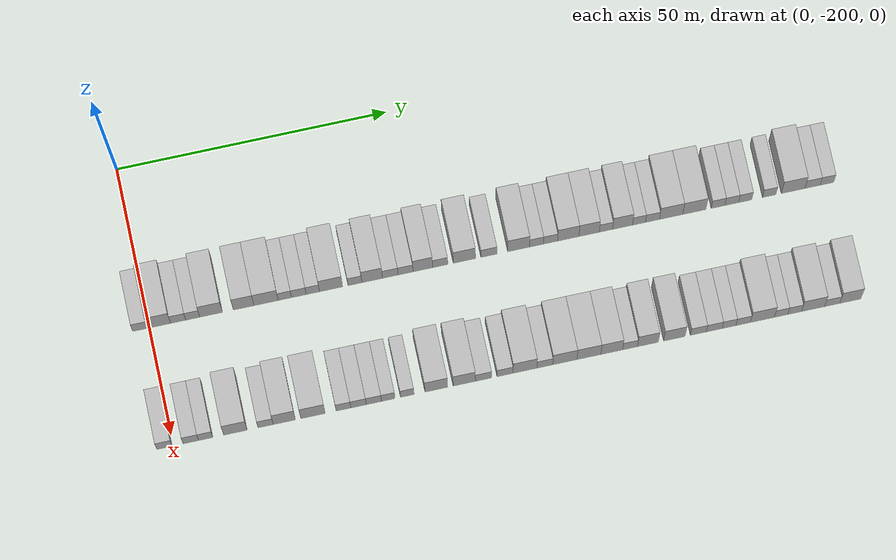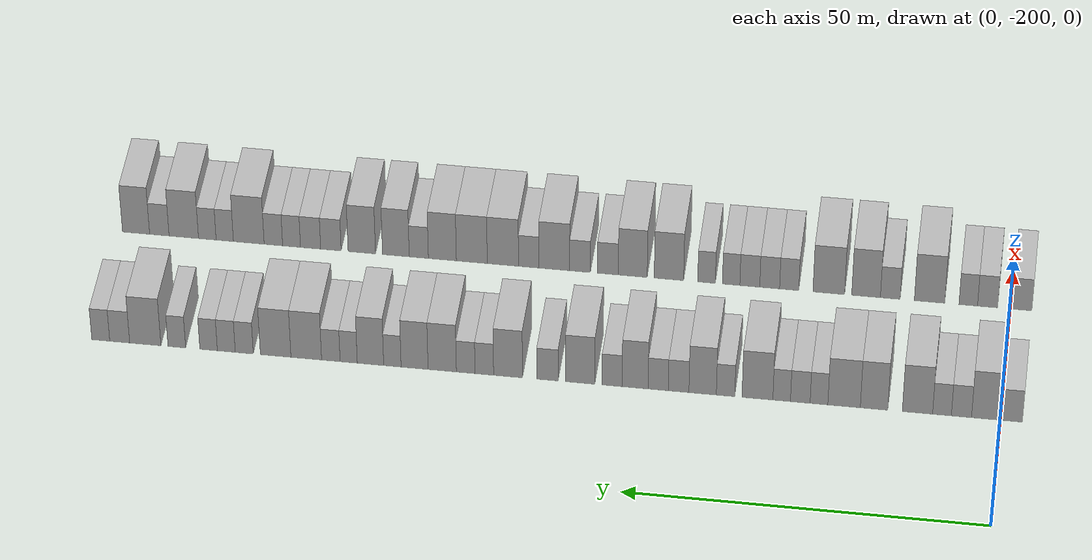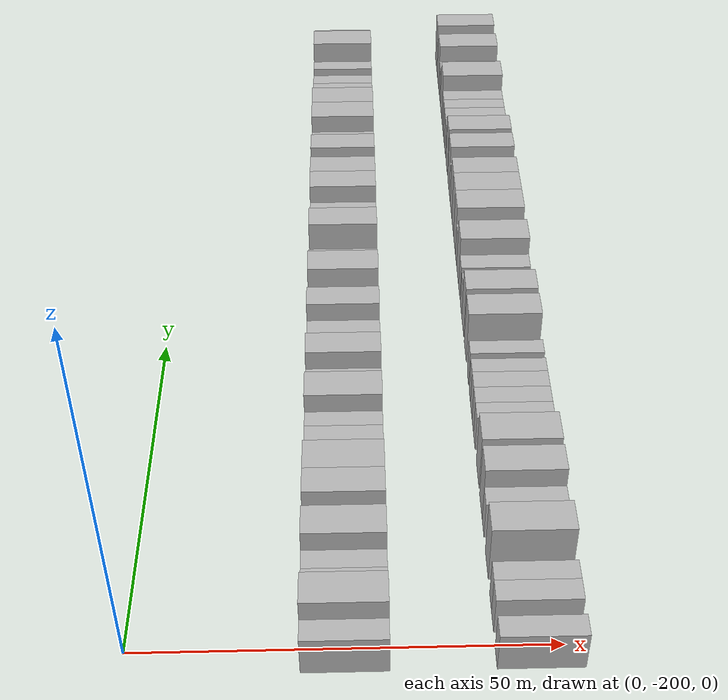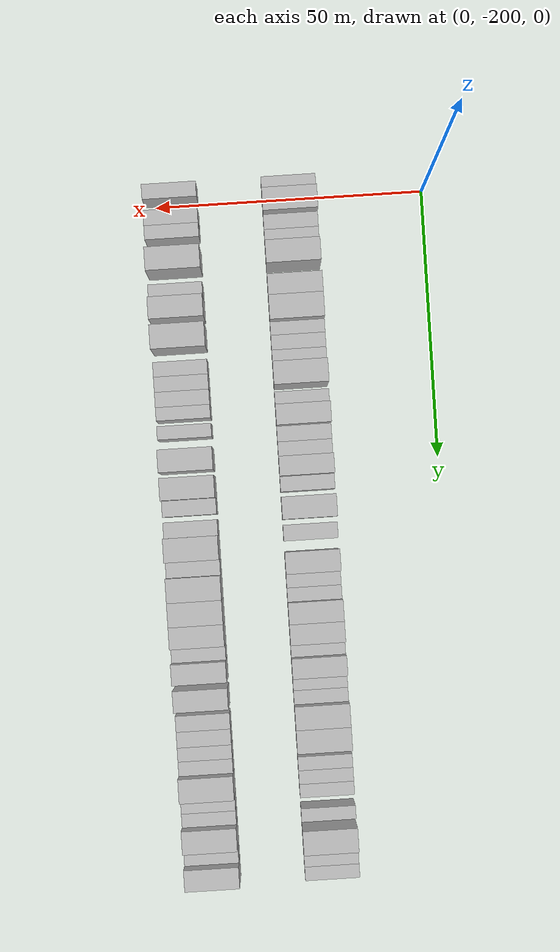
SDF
<sdf version="1.6">
 <world name="default">
  <model name="building_1">
   <static>1</static>
   <pose>25.0000 -201.6089 0 0.000000 0.000000 0.000000</pose>
   <link name="link">
    <pose>0 0 3.00 0 0 0</pose>
    <collision name="collision"><geometry><box><size>10.0000 2.7822 6.0000</size></box></geometry></collision>
    <visual name="visual">
     <cast_shadows>0</cast_shadows>
     <geometry><box><size>10.0000 2.7822 6.0000</size></box></geometry>
     <material>
      <script>
       <uri>model://HANNAS_wall/materials/scripts</uri>
       <uri>model://HANNAS_wall/materials/textures</uri>
       <name>vrc/HANNAS_wall</name>
      </script>
     </material>
    </visual>
   </link>
  </model>
  <model name="building_2">
   <static>1</static>
   <pose>25.0000 -198.1275 0 0.000000 0.000000 0.000000</pose>
   <link name="link">
    <pose>0 0 4.50 0 0 0</pose>
    <collision name="collision"><geometry><box><size>10.0000 4.1806 9.0000</size></box></geometry></collision>
    <visual name="visual">
     <cast_shadows>0</cast_shadows>
     <geometry><box><size>10.0000 4.1806 9.0000</size></box></geometry>
     <material>
      <script>
       <uri>model://HANNAS_wall/materials/scripts</uri>
       <uri>model://HANNAS_wall/materials/textures</uri>
       <name>vrc/HANNAS_wall</name>
      </script>
     </material>
    </visual>
   </link>
  </model>
  <model name="building_3">
   <static>1</static>
   <pose>25.0000 -194.6567 0 0.000000 0.000000 0.000000</pose>
   <link name="link">
    <pose>0 0 3.00 0 0 0</pose>
    <collision name="collision"><geometry><box><size>10.0000 2.7611 6.0000</size></box></geometry></collision>
    <visual name="visual">
     <cast_shadows>0</cast_shadows>
     <geometry><box><size>10.0000 2.7611 6.0000</size></box></geometry>
     <material>
      <script>
       <uri>model://HANNAS_wall/materials/scripts</uri>
       <uri>model://HANNAS_wall/materials/textures</uri>
       <name>vrc/HANNAS_wall</name>
      </script>
     </material>
    </visual>
   </link>
  </model>
  <model name="building_4">
   <static>1</static>
   <pose>25.0000 -191.9876 0 0.000000 0.000000 0.000000</pose>
   <link name="link">
    <pose>0 0 3.00 0 0 0</pose>
    <collision name="collision"><geometry><box><size>10.0000 2.5771 6.0000</size></box></geometry></collision>
    <visual name="visual">
     <cast_shadows>0</cast_shadows>
     <geometry><box><size>10.0000 2.5771 6.0000</size></box></geometry>
     <material>
      <script>
       <uri>model://HANNAS_wall/materials/scripts</uri>
       <uri>model://HANNAS_wall/materials/textures</uri>
       <name>vrc/HANNAS_wall</name>
      </script>
     </material>
    </visual>
   </link>
  </model>
  <model name="building_5">
   <static>1</static>
   <pose>25.0000 -188.6193 0 0.000000 0.000000 0.000000</pose>
   <link name="link">
    <pose>0 0 4.50 0 0 0</pose>
    <collision name="collision"><geometry><box><size>10.0000 4.1595 9.0000</size></box></geometry></collision>
    <visual name="visual">
     <cast_shadows>0</cast_shadows>
     <geometry><box><size>10.0000 4.1595 9.0000</size></box></geometry>
     <material>
      <script>
       <uri>model://HANNAS_wall/materials/scripts</uri>
       <uri>model://HANNAS_wall/materials/textures</uri>
       <name>vrc/HANNAS_wall</name>
      </script>
     </material>
    </visual>
   </link>
  </model>
  <model name="building_6">
   <static>1</static>
   <pose>25.0000 -182.6517 0 0.000000 0.000000 0.000000</pose>
   <link name="link">
    <pose>0 0 4.50 0 0 0</pose>
    <collision name="collision"><geometry><box><size>10.0000 3.7756 9.0000</size></box></geometry></collision>
    <visual name="visual">
     <cast_shadows>0</cast_shadows>
     <geometry><box><size>10.0000 3.7756 9.0000</size></box></geometry>
     <material>
      <script>
       <uri>model://HANNAS_wall/materials/scripts</uri>
       <uri>model://HANNAS_wall/materials/textures</uri>
       <name>vrc/HANNAS_wall</name>
      </script>
     </material>
    </visual>
   </link>
  </model>
  <model name="building_7">
   <static>1</static>
   <pose>25.0000 -178.5277 0 0.000000 0.000000 0.000000</pose>
   <link name="link">
    <pose>0 0 4.50 0 0 0</pose>
    <collision name="collision"><geometry><box><size>10.0000 4.4723 9.0000</size></box></geometry></collision>
    <visual name="visual">
     <cast_shadows>0</cast_shadows>
     <geometry><box><size>10.0000 4.4723 9.0000</size></box></geometry>
     <material>
      <script>
       <uri>model://HANNAS_wall/materials/scripts</uri>
       <uri>model://HANNAS_wall/materials/textures</uri>
       <name>vrc/HANNAS_wall</name>
      </script>
     </material>
    </visual>
   </link>
  </model>
  <model name="building_8">
   <static>1</static>
   <pose>25.0000 -175.0698 0 0.000000 0.000000 0.000000</pose>
   <link name="link">
    <pose>0 0 3.00 0 0 0</pose>
    <collision name="collision"><geometry><box><size>10.0000 2.4434 6.0000</size></box></geometry></collision>
    <visual name="visual">
     <cast_shadows>0</cast_shadows>
     <geometry><box><size>10.0000 2.4434 6.0000</size></box></geometry>
     <material>
      <script>
       <uri>model://HANNAS_wall/materials/scripts</uri>
       <uri>model://HANNAS_wall/materials/textures</uri>
       <name>vrc/HANNAS_wall</name>
      </script>
     </material>
    </visual>
   </link>
  </model>
  <model name="building_9">
   <static>1</static>
   <pose>25.0000 -172.4947 0 0.000000 0.000000 0.000000</pose>
   <link name="link">
    <pose>0 0 3.00 0 0 0</pose>
    <collision name="collision"><geometry><box><size>10.0000 2.7070 6.0000</size></box></geometry></collision>
    <visual name="visual">
     <cast_shadows>0</cast_shadows>
     <geometry><box><size>10.0000 2.7070 6.0000</size></box></geometry>
     <material>
      <script>
       <uri>model://HANNAS_wall/materials/scripts</uri>
       <uri>model://HANNAS_wall/materials/textures</uri>
       <name>vrc/HANNAS_wall</name>
      </script>
     </material>
    </visual>
   </link>
  </model>
  <model name="building_10">
   <static>1</static>
   <pose>25.0000 -169.9263 0 0.000000 0.000000 0.000000</pose>
   <link name="link">
    <pose>0 0 3.00 0 0 0</pose>
    <collision name="collision"><geometry><box><size>10.0000 2.4297 6.0000</size></box></geometry></collision>
    <visual name="visual">
     <cast_shadows>0</cast_shadows>
     <geometry><box><size>10.0000 2.4297 6.0000</size></box></geometry>
     <material>
      <script>
       <uri>model://HANNAS_wall/materials/scripts</uri>
       <uri>model://HANNAS_wall/materials/textures</uri>
       <name>vrc/HANNAS_wall</name>
      </script>
     </material>
    </visual>
   </link>
  </model>
  <model name="building_11">
   <static>1</static>
   <pose>25.0000 -166.5794 0 0.000000 0.000000 0.000000</pose>
   <link name="link">
    <pose>0 0 4.50 0 0 0</pose>
    <collision name="collision"><geometry><box><size>10.0000 4.2642 9.0000</size></box></geometry></collision>
    <visual name="visual">
     <cast_shadows>0</cast_shadows>
     <geometry><box><size>10.0000 4.2642 9.0000</size></box></geometry>
     <material>
      <script>
       <uri>model://HANNAS_wall/materials/scripts</uri>
       <uri>model://HANNAS_wall/materials/textures</uri>
       <name>vrc/HANNAS_wall</name>
      </script>
     </material>
    </visual>
   </link>
  </model>
  <model name="building_12">
   <static>1</static>
   <pose>25.0000 -162.1725 0 0.000000 0.000000 0.000000</pose>
   <link name="link">
    <pose>0 0 3.00 0 0 0</pose>
    <collision name="collision"><geometry><box><size>10.0000 2.5494 6.0000</size></box></geometry></collision>
    <visual name="visual">
     <cast_shadows>0</cast_shadows>
     <geometry><box><size>10.0000 2.5494 6.0000</size></box></geometry>
     <material>
      <script>
       <uri>model://HANNAS_wall/materials/scripts</uri>
       <uri>model://HANNAS_wall/materials/textures</uri>
       <name>vrc/HANNAS_wall</name>
      </script>
     </material>
    </visual>
   </link>
  </model>
  <model name="building_13">
   <static>1</static>
   <pose>25.0000 -159.0019 0 0.000000 0.000000 0.000000</pose>
   <link name="link">
    <pose>0 0 4.50 0 0 0</pose>
    <collision name="collision"><geometry><box><size>10.0000 3.7918 9.0000</size></box></geometry></collision>
    <visual name="visual">
     <cast_shadows>0</cast_shadows>
     <geometry><box><size>10.0000 3.7918 9.0000</size></box></geometry>
     <material>
      <script>
       <uri>model://HANNAS_wall/materials/scripts</uri>
       <uri>model://HANNAS_wall/materials/textures</uri>
       <name>vrc/HANNAS_wall</name>
      </script>
     </material>
    </visual>
   </link>
  </model>
  <model name="building_14">
   <static>1</static>
   <pose>25.0000 -155.6749 0 0.000000 0.000000 0.000000</pose>
   <link name="link">
    <pose>0 0 3.00 0 0 0</pose>
    <collision name="collision"><geometry><box><size>10.0000 2.8622 6.0000</size></box></geometry></collision>
    <visual name="visual">
     <cast_shadows>0</cast_shadows>
     <geometry><box><size>10.0000 2.8622 6.0000</size></box></geometry>
     <material>
      <script>
       <uri>model://HANNAS_wall/materials/scripts</uri>
       <uri>model://HANNAS_wall/materials/textures</uri>
       <name>vrc/HANNAS_wall</name>
      </script>
     </material>
    </visual>
   </link>
  </model>
  <model name="building_15">
   <static>1</static>
   <pose>25.0000 -152.8484 0 0.000000 0.000000 0.000000</pose>
   <link name="link">
    <pose>0 0 3.00 0 0 0</pose>
    <collision name="collision"><geometry><box><size>10.0000 2.7909 6.0000</size></box></geometry></collision>
    <visual name="visual">
     <cast_shadows>0</cast_shadows>
     <geometry><box><size>10.0000 2.7909 6.0000</size></box></geometry>
     <material>
      <script>
       <uri>model://HANNAS_wall/materials/scripts</uri>
       <uri>model://HANNAS_wall/materials/textures</uri>
       <name>vrc/HANNAS_wall</name>
      </script>
     </material>
    </visual>
   </link>
  </model>
  <model name="building_16">
   <static>1</static>
   <pose>25.0000 -149.6507 0 0.000000 0.000000 0.000000</pose>
   <link name="link">
    <pose>0 0 4.50 0 0 0</pose>
    <collision name="collision"><geometry><box><size>10.0000 3.6045 9.0000</size></box></geometry></collision>
    <visual name="visual">
     <cast_shadows>0</cast_shadows>
     <geometry><box><size>10.0000 3.6045 9.0000</size></box></geometry>
     <material>
      <script>
       <uri>model://HANNAS_wall/materials/scripts</uri>
       <uri>model://HANNAS_wall/materials/textures</uri>
       <name>vrc/HANNAS_wall</name>
      </script>
     </material>
    </visual>
   </link>
  </model>
  <model name="building_17">
   <static>1</static>
   <pose>25.0000 -146.4542 0 0.000000 0.000000 0.000000</pose>
   <link name="link">
    <pose>0 0 3.00 0 0 0</pose>
    <collision name="collision"><geometry><box><size>10.0000 2.7886 6.0000</size></box></geometry></collision>
    <visual name="visual">
     <cast_shadows>0</cast_shadows>
     <geometry><box><size>10.0000 2.7886 6.0000</size></box></geometry>
     <material>
      <script>
       <uri>model://HANNAS_wall/materials/scripts</uri>
       <uri>model://HANNAS_wall/materials/textures</uri>
       <name>vrc/HANNAS_wall</name>
      </script>
     </material>
    </visual>
   </link>
  </model>
  <model name="building_18">
   <static>1</static>
   <pose>25.0000 -142.0070 0 0.000000 0.000000 0.000000</pose>
   <link name="link">
    <pose>0 0 4.50 0 0 0</pose>
    <collision name="collision"><geometry><box><size>10.0000 4.1057 9.0000</size></box></geometry></collision>
    <visual name="visual">
     <cast_shadows>0</cast_shadows>
     <geometry><box><size>10.0000 4.1057 9.0000</size></box></geometry>
     <material>
      <script>
       <uri>model://HANNAS_wall/materials/scripts</uri>
       <uri>model://HANNAS_wall/materials/textures</uri>
       <name>vrc/HANNAS_wall</name>
      </script>
     </material>
    </visual>
   </link>
  </model>
  <model name="building_19">
   <static>1</static>
   <pose>25.0000 -137.4761 0 0.000000 0.000000 0.000000</pose>
   <link name="link">
    <pose>0 0 3.00 0 0 0</pose>
    <collision name="collision"><geometry><box><size>10.0000 2.9560 6.0000</size></box></geometry></collision>
    <visual name="visual">
     <cast_shadows>0</cast_shadows>
     <geometry><box><size>10.0000 2.9560 6.0000</size></box></geometry>
     <material>
      <script>
       <uri>model://HANNAS_wall/materials/scripts</uri>
       <uri>model://HANNAS_wall/materials/textures</uri>
       <name>vrc/HANNAS_wall</name>
      </script>
     </material>
    </visual>
   </link>
  </model>
  <model name="building_20">
   <static>1</static>
   <pose>25.0000 -131.9859 0 0.000000 0.000000 0.000000</pose>
   <link name="link">
    <pose>0 0 4.50 0 0 0</pose>
    <collision name="collision"><geometry><box><size>10.0000 4.0244 9.0000</size></box></geometry></collision>
    <visual name="visual">
     <cast_shadows>0</cast_shadows>
     <geometry><box><size>10.0000 4.0244 9.0000</size></box></geometry>
     <material>
      <script>
       <uri>model://HANNAS_wall/materials/scripts</uri>
       <uri>model://HANNAS_wall/materials/textures</uri>
       <name>vrc/HANNAS_wall</name>
      </script>
     </material>
    </visual>
   </link>
  </model>
  <model name="building_21">
   <static>1</static>
   <pose>25.0000 -128.6789 0 0.000000 0.000000 0.000000</pose>
   <link name="link">
    <pose>0 0 3.00 0 0 0</pose>
    <collision name="collision"><geometry><box><size>10.0000 2.5896 6.0000</size></box></geometry></collision>
    <visual name="visual">
     <cast_shadows>0</cast_shadows>
     <geometry><box><size>10.0000 2.5896 6.0000</size></box></geometry>
     <material>
      <script>
       <uri>model://HANNAS_wall/materials/scripts</uri>
       <uri>model://HANNAS_wall/materials/textures</uri>
       <name>vrc/HANNAS_wall</name>
      </script>
     </material>
    </visual>
   </link>
  </model>
  <model name="building_22">
   <static>1</static>
   <pose>25.0000 -126.0847 0 0.000000 0.000000 0.000000</pose>
   <link name="link">
    <pose>0 0 3.00 0 0 0</pose>
    <collision name="collision"><geometry><box><size>10.0000 2.5989 6.0000</size></box></geometry></collision>
    <visual name="visual">
     <cast_shadows>0</cast_shadows>
     <geometry><box><size>10.0000 2.5989 6.0000</size></box></geometry>
     <material>
      <script>
       <uri>model://HANNAS_wall/materials/scripts</uri>
       <uri>model://HANNAS_wall/materials/textures</uri>
       <name>vrc/HANNAS_wall</name>
      </script>
     </material>
    </visual>
   </link>
  </model>
  <model name="building_23">
   <static>1</static>
   <pose>25.0000 -122.8074 0 0.000000 0.000000 0.000000</pose>
   <link name="link">
    <pose>0 0 4.50 0 0 0</pose>
    <collision name="collision"><geometry><box><size>10.0000 3.9556 9.0000</size></box></geometry></collision>
    <visual name="visual">
     <cast_shadows>0</cast_shadows>
     <geometry><box><size>10.0000 3.9556 9.0000</size></box></geometry>
     <material>
      <script>
       <uri>model://HANNAS_wall/materials/scripts</uri>
       <uri>model://HANNAS_wall/materials/textures</uri>
       <name>vrc/HANNAS_wall</name>
      </script>
     </material>
    </visual>
   </link>
  </model>
  <model name="building_24">
   <static>1</static>
   <pose>25.0000 -118.9435 0 0.000000 0.000000 0.000000</pose>
   <link name="link">
    <pose>0 0 4.50 0 0 0</pose>
    <collision name="collision"><geometry><box><size>10.0000 3.7723 9.0000</size></box></geometry></collision>
    <visual name="visual">
     <cast_shadows>0</cast_shadows>
     <geometry><box><size>10.0000 3.7723 9.0000</size></box></geometry>
     <material>
      <script>
       <uri>model://HANNAS_wall/materials/scripts</uri>
       <uri>model://HANNAS_wall/materials/textures</uri>
       <name>vrc/HANNAS_wall</name>
      </script>
     </material>
    </visual>
   </link>
  </model>
  <model name="building_25">
   <static>1</static>
   <pose>25.0000 -115.8389 0 0.000000 0.000000 0.000000</pose>
   <link name="link">
    <pose>0 0 3.00 0 0 0</pose>
    <collision name="collision"><geometry><box><size>10.0000 2.4369 6.0000</size></box></geometry></collision>
    <visual name="visual">
     <cast_shadows>0</cast_shadows>
     <geometry><box><size>10.0000 2.4369 6.0000</size></box></geometry>
     <material>
      <script>
       <uri>model://HANNAS_wall/materials/scripts</uri>
       <uri>model://HANNAS_wall/materials/textures</uri>
       <name>vrc/HANNAS_wall</name>
      </script>
     </material>
    </visual>
   </link>
  </model>
  <model name="building_26">
   <static>1</static>
   <pose>25.0000 -112.7726 0 0.000000 0.000000 0.000000</pose>
   <link name="link">
    <pose>0 0 4.50 0 0 0</pose>
    <collision name="collision"><geometry><box><size>10.0000 3.6957 9.0000</size></box></geometry></collision>
    <visual name="visual">
     <cast_shadows>0</cast_shadows>
     <geometry><box><size>10.0000 3.6957 9.0000</size></box></geometry>
     <material>
      <script>
       <uri>model://HANNAS_wall/materials/scripts</uri>
       <uri>model://HANNAS_wall/materials/textures</uri>
       <name>vrc/HANNAS_wall</name>
      </script>
     </material>
    </visual>
   </link>
  </model>
  <model name="building_27">
   <static>1</static>
   <pose>25.0000 -109.7204 0 0.000000 0.000000 0.000000</pose>
   <link name="link">
    <pose>0 0 3.00 0 0 0</pose>
    <collision name="collision"><geometry><box><size>10.0000 2.4086 6.0000</size></box></geometry></collision>
    <visual name="visual">
     <cast_shadows>0</cast_shadows>
     <geometry><box><size>10.0000 2.4086 6.0000</size></box></geometry>
     <material>
      <script>
       <uri>model://HANNAS_wall/materials/scripts</uri>
       <uri>model://HANNAS_wall/materials/textures</uri>
       <name>vrc/HANNAS_wall</name>
      </script>
     </material>
    </visual>
   </link>
  </model>
  <model name="building_28">
   <static>1</static>
   <pose>25.0000 -107.2191 0 0.000000 0.000000 0.000000</pose>
   <link name="link">
    <pose>0 0 3.00 0 0 0</pose>
    <collision name="collision"><geometry><box><size>10.0000 2.5940 6.0000</size></box></geometry></collision>
    <visual name="visual">
     <cast_shadows>0</cast_shadows>
     <geometry><box><size>10.0000 2.5940 6.0000</size></box></geometry>
     <material>
      <script>
       <uri>model://HANNAS_wall/materials/scripts</uri>
       <uri>model://HANNAS_wall/materials/textures</uri>
       <name>vrc/HANNAS_wall</name>
      </script>
     </material>
    </visual>
   </link>
  </model>
  <model name="building_29">
   <static>1</static>
   <pose>25.0000 -103.7713 0 0.000000 0.000000 0.000000</pose>
   <link name="link">
    <pose>0 0 4.50 0 0 0</pose>
    <collision name="collision"><geometry><box><size>10.0000 4.3016 9.0000</size></box></geometry></collision>
    <visual name="visual">
     <cast_shadows>0</cast_shadows>
     <geometry><box><size>10.0000 4.3016 9.0000</size></box></geometry>
     <material>
      <script>
       <uri>model://HANNAS_wall/materials/scripts</uri>
       <uri>model://HANNAS_wall/materials/textures</uri>
       <name>vrc/HANNAS_wall</name>
      </script>
     </material>
    </visual>
   </link>
  </model>
  <model name="building_30">
   <static>1</static>
   <pose>25.0000 -99.4727 0 0.000000 0.000000 0.000000</pose>
   <link name="link">
    <pose>0 0 4.50 0 0 0</pose>
    <collision name="collision"><geometry><box><size>10.0000 4.2955 9.0000</size></box></geometry></collision>
    <visual name="visual">
     <cast_shadows>0</cast_shadows>
     <geometry><box><size>10.0000 4.2955 9.0000</size></box></geometry>
     <material>
      <script>
       <uri>model://HANNAS_wall/materials/scripts</uri>
       <uri>model://HANNAS_wall/materials/textures</uri>
       <name>vrc/HANNAS_wall</name>
      </script>
     </material>
    </visual>
   </link>
  </model>
  <model name="building_31">
   <static>1</static>
   <pose>25.0000 -95.0583 0 0.000000 0.000000 0.000000</pose>
   <link name="link">
    <pose>0 0 3.00 0 0 0</pose>
    <collision name="collision"><geometry><box><size>10.0000 2.5334 6.0000</size></box></geometry></collision>
    <visual name="visual">
     <cast_shadows>0</cast_shadows>
     <geometry><box><size>10.0000 2.5334 6.0000</size></box></geometry>
     <material>
      <script>
       <uri>model://HANNAS_wall/materials/scripts</uri>
       <uri>model://HANNAS_wall/materials/textures</uri>
       <name>vrc/HANNAS_wall</name>
      </script>
     </material>
    </visual>
   </link>
  </model>
  <model name="building_32">
   <static>1</static>
   <pose>25.0000 -92.5338 0 0.000000 0.000000 0.000000</pose>
   <link name="link">
    <pose>0 0 3.00 0 0 0</pose>
    <collision name="collision"><geometry><box><size>10.0000 2.5155 6.0000</size></box></geometry></collision>
    <visual name="visual">
     <cast_shadows>0</cast_shadows>
     <geometry><box><size>10.0000 2.5155 6.0000</size></box></geometry>
     <material>
      <script>
       <uri>model://HANNAS_wall/materials/scripts</uri>
       <uri>model://HANNAS_wall/materials/textures</uri>
       <name>vrc/HANNAS_wall</name>
      </script>
     </material>
    </visual>
   </link>
  </model>
  <model name="building_33">
   <static>1</static>
   <pose>25.0000 -90.0422 0 0.000000 0.000000 0.000000</pose>
   <link name="link">
    <pose>0 0 3.00 0 0 0</pose>
    <collision name="collision"><geometry><box><size>10.0000 2.4678 6.0000</size></box></geometry></collision>
    <visual name="visual">
     <cast_shadows>0</cast_shadows>
     <geometry><box><size>10.0000 2.4678 6.0000</size></box></geometry>
     <material>
      <script>
       <uri>model://HANNAS_wall/materials/scripts</uri>
       <uri>model://HANNAS_wall/materials/textures</uri>
       <name>vrc/HANNAS_wall</name>
      </script>
     </material>
    </visual>
   </link>
  </model>
  <model name="building_34">
   <static>1</static>
   <pose>25.0000 -85.5659 0 0.000000 0.000000 0.000000</pose>
   <link name="link">
    <pose>0 0 3.00 0 0 0</pose>
    <collision name="collision"><geometry><box><size>10.0000 2.4848 6.0000</size></box></geometry></collision>
    <visual name="visual">
     <cast_shadows>0</cast_shadows>
     <geometry><box><size>10.0000 2.4848 6.0000</size></box></geometry>
     <material>
      <script>
       <uri>model://HANNAS_wall/materials/scripts</uri>
       <uri>model://HANNAS_wall/materials/textures</uri>
       <name>vrc/HANNAS_wall</name>
      </script>
     </material>
    </visual>
   </link>
  </model>
  <model name="building_35">
   <static>1</static>
   <pose>25.0000 -81.1185 0 0.000000 0.000000 0.000000</pose>
   <link name="link">
    <pose>0 0 4.50 0 0 0</pose>
    <collision name="collision"><geometry><box><size>10.0000 4.4101 9.0000</size></box></geometry></collision>
    <visual name="visual">
     <cast_shadows>0</cast_shadows>
     <geometry><box><size>10.0000 4.4101 9.0000</size></box></geometry>
     <material>
      <script>
       <uri>model://HANNAS_wall/materials/scripts</uri>
       <uri>model://HANNAS_wall/materials/textures</uri>
       <name>vrc/HANNAS_wall</name>
      </script>
     </material>
    </visual>
   </link>
  </model>
  <model name="building_36">
   <static>1</static>
   <pose>25.0000 -77.5045 0 0.000000 0.000000 0.000000</pose>
   <link name="link">
    <pose>0 0 3.00 0 0 0</pose>
    <collision name="collision"><geometry><box><size>10.0000 2.8178 6.0000</size></box></geometry></collision>
    <visual name="visual">
     <cast_shadows>0</cast_shadows>
     <geometry><box><size>10.0000 2.8178 6.0000</size></box></geometry>
     <material>
      <script>
       <uri>model://HANNAS_wall/materials/scripts</uri>
       <uri>model://HANNAS_wall/materials/textures</uri>
       <name>vrc/HANNAS_wall</name>
      </script>
     </material>
    </visual>
   </link>
  </model>
  <model name="building_37">
   <static>1</static>
   <pose>25.0000 -74.8327 0 0.000000 0.000000 0.000000</pose>
   <link name="link">
    <pose>0 0 3.00 0 0 0</pose>
    <collision name="collision"><geometry><box><size>10.0000 2.5258 6.0000</size></box></geometry></collision>
    <visual name="visual">
     <cast_shadows>0</cast_shadows>
     <geometry><box><size>10.0000 2.5258 6.0000</size></box></geometry>
     <material>
      <script>
       <uri>model://HANNAS_wall/materials/scripts</uri>
       <uri>model://HANNAS_wall/materials/textures</uri>
       <name>vrc/HANNAS_wall</name>
      </script>
     </material>
    </visual>
   </link>
  </model>
  <model name="building_110">
   <static>1</static>
   <pose>47.0000 -201.6073 0 0.000000 0.000000 0.000000</pose>
   <link name="link">
    <pose>0 0 3.00 0 0 0</pose>
    <collision name="collision"><geometry><box><size>10.0000 2.7853 6.0000</size></box></geometry></collision>
    <visual name="visual">
     <cast_shadows>0</cast_shadows>
     <geometry><box><size>10.0000 2.7853 6.0000</size></box></geometry>
     <material>
      <script>
       <uri>model://HANNAS_wall/materials/scripts</uri>
       <uri>model://HANNAS_wall/materials/textures</uri>
       <name>vrc/HANNAS_wall</name>
      </script>
     </material>
    </visual>
   </link>
  </model>
  <model name="building_111">
   <static>1</static>
   <pose>47.0000 -196.8061 0 0.000000 0.000000 0.000000</pose>
   <link name="link">
    <pose>0 0 3.00 0 0 0</pose>
    <collision name="collision"><geometry><box><size>10.0000 2.8171 6.0000</size></box></geometry></collision>
    <visual name="visual">
     <cast_shadows>0</cast_shadows>
     <geometry><box><size>10.0000 2.8171 6.0000</size></box></geometry>
     <material>
      <script>
       <uri>model://HANNAS_wall/materials/scripts</uri>
       <uri>model://HANNAS_wall/materials/textures</uri>
       <name>vrc/HANNAS_wall</name>
      </script>
     </material>
    </visual>
   </link>
  </model>
  <model name="building_112">
   <static>1</static>
   <pose>47.0000 -194.0974 0 0.000000 0.000000 0.000000</pose>
   <link name="link">
    <pose>0 0 3.00 0 0 0</pose>
    <collision name="collision"><geometry><box><size>10.0000 2.6004 6.0000</size></box></geometry></collision>
    <visual name="visual">
     <cast_shadows>0</cast_shadows>
     <geometry><box><size>10.0000 2.6004 6.0000</size></box></geometry>
     <material>
      <script>
       <uri>model://HANNAS_wall/materials/scripts</uri>
       <uri>model://HANNAS_wall/materials/textures</uri>
       <name>vrc/HANNAS_wall</name>
      </script>
     </material>
    </visual>
   </link>
  </model>
  <model name="building_113">
   <static>1</static>
   <pose>47.0000 -188.6657 0 0.000000 0.000000 0.000000</pose>
   <link name="link">
    <pose>0 0 4.50 0 0 0</pose>
    <collision name="collision"><geometry><box><size>10.0000 4.2632 9.0000</size></box></geometry></collision>
    <visual name="visual">
     <cast_shadows>0</cast_shadows>
     <geometry><box><size>10.0000 4.2632 9.0000</size></box></geometry>
     <material>
      <script>
       <uri>model://HANNAS_wall/materials/scripts</uri>
       <uri>model://HANNAS_wall/materials/textures</uri>
       <name>vrc/HANNAS_wall</name>
      </script>
     </material>
    </visual>
   </link>
  </model>
  <model name="building_114">
   <static>1</static>
   <pose>47.0000 -183.1464 0 0.000000 0.000000 0.000000</pose>
   <link name="link">
    <pose>0 0 3.00 0 0 0</pose>
    <collision name="collision"><geometry><box><size>10.0000 2.7753 6.0000</size></box></geometry></collision>
    <visual name="visual">
     <cast_shadows>0</cast_shadows>
     <geometry><box><size>10.0000 2.7753 6.0000</size></box></geometry>
     <material>
      <script>
       <uri>model://HANNAS_wall/materials/scripts</uri>
       <uri>model://HANNAS_wall/materials/textures</uri>
       <name>vrc/HANNAS_wall</name>
      </script>
     </material>
    </visual>
   </link>
  </model>
  <model name="building_115">
   <static>1</static>
   <pose>47.0000 -179.7407 0 0.000000 0.000000 0.000000</pose>
   <link name="link">
    <pose>0 0 4.50 0 0 0</pose>
    <collision name="collision"><geometry><box><size>10.0000 4.0362 9.0000</size></box></geometry></collision>
    <visual name="visual">
     <cast_shadows>0</cast_shadows>
     <geometry><box><size>10.0000 4.0362 9.0000</size></box></geometry>
     <material>
      <script>
       <uri>model://HANNAS_wall/materials/scripts</uri>
       <uri>model://HANNAS_wall/materials/textures</uri>
       <name>vrc/HANNAS_wall</name>
      </script>
     </material>
    </visual>
   </link>
  </model>
  <model name="building_116">
   <static>1</static>
   <pose>47.0000 -174.4920 0 0.000000 0.000000 0.000000</pose>
   <link name="link">
    <pose>0 0 4.50 0 0 0</pose>
    <collision name="collision"><geometry><box><size>10.0000 4.4612 9.0000</size></box></geometry></collision>
    <visual name="visual">
     <cast_shadows>0</cast_shadows>
     <geometry><box><size>10.0000 4.4612 9.0000</size></box></geometry>
     <material>
      <script>
       <uri>model://HANNAS_wall/materials/scripts</uri>
       <uri>model://HANNAS_wall/materials/textures</uri>
       <name>vrc/HANNAS_wall</name>
      </script>
     </material>
    </visual>
   </link>
  </model>
  <model name="building_117">
   <static>1</static>
   <pose>47.0000 -168.9097 0 0.000000 0.000000 0.000000</pose>
   <link name="link">
    <pose>0 0 3.00 0 0 0</pose>
    <collision name="collision"><geometry><box><size>10.0000 2.7035 6.0000</size></box></geometry></collision>
    <visual name="visual">
     <cast_shadows>0</cast_shadows>
     <geometry><box><size>10.0000 2.7035 6.0000</size></box></geometry>
     <material>
      <script>
       <uri>model://HANNAS_wall/materials/scripts</uri>
       <uri>model://HANNAS_wall/materials/textures</uri>
       <name>vrc/HANNAS_wall</name>
      </script>
     </material>
    </visual>
   </link>
  </model>
  <model name="building_118">
   <static>1</static>
   <pose>47.0000 -166.1570 0 0.000000 0.000000 0.000000</pose>
   <link name="link">
    <pose>0 0 3.00 0 0 0</pose>
    <collision name="collision"><geometry><box><size>10.0000 2.8018 6.0000</size></box></geometry></collision>
    <visual name="visual">
     <cast_shadows>0</cast_shadows>
     <geometry><box><size>10.0000 2.8018 6.0000</size></box></geometry>
     <material>
      <script>
       <uri>model://HANNAS_wall/materials/scripts</uri>
       <uri>model://HANNAS_wall/materials/textures</uri>
       <name>vrc/HANNAS_wall</name>
      </script>
     </material>
    </visual>
   </link>
  </model>
  <model name="building_119">
   <static>1</static>
   <pose>47.0000 -163.3509 0 0.000000 0.000000 0.000000</pose>
   <link name="link">
    <pose>0 0 3.00 0 0 0</pose>
    <collision name="collision"><geometry><box><size>10.0000 2.8104 6.0000</size></box></geometry></collision>
    <visual name="visual">
     <cast_shadows>0</cast_shadows>
     <geometry><box><size>10.0000 2.8104 6.0000</size></box></geometry>
     <material>
      <script>
       <uri>model://HANNAS_wall/materials/scripts</uri>
       <uri>model://HANNAS_wall/materials/textures</uri>
       <name>vrc/HANNAS_wall</name>
      </script>
     </material>
    </visual>
   </link>
  </model>
  <model name="building_120">
   <static>1</static>
   <pose>47.0000 -160.7114 0 0.000000 0.000000 0.000000</pose>
   <link name="link">
    <pose>0 0 3.00 0 0 0</pose>
    <collision name="collision"><geometry><box><size>10.0000 2.4686 6.0000</size></box></geometry></collision>
    <visual name="visual">
     <cast_shadows>0</cast_shadows>
     <geometry><box><size>10.0000 2.4686 6.0000</size></box></geometry>
     <material>
      <script>
       <uri>model://HANNAS_wall/materials/scripts</uri>
       <uri>model://HANNAS_wall/materials/textures</uri>
       <name>vrc/HANNAS_wall</name>
      </script>
     </material>
    </visual>
   </link>
  </model>
  <model name="building_121">
   <static>1</static>
   <pose>47.0000 -157.2325 0 0.000000 0.000000 0.000000</pose>
   <link name="link">
    <pose>0 0 3.00 0 0 0</pose>
    <collision name="collision"><geometry><box><size>10.0000 2.4892 6.0000</size></box></geometry></collision>
    <visual name="visual">
     <cast_shadows>0</cast_shadows>
     <geometry><box><size>10.0000 2.4892 6.0000</size></box></geometry>
     <material>
      <script>
       <uri>model://HANNAS_wall/materials/scripts</uri>
       <uri>model://HANNAS_wall/materials/textures</uri>
       <name>vrc/HANNAS_wall</name>
      </script>
     </material>
    </visual>
   </link>
  </model>
  <model name="building_122">
   <static>1</static>
   <pose>47.0000 -151.9059 0 0.000000 0.000000 0.000000</pose>
   <link name="link">
    <pose>0 0 4.50 0 0 0</pose>
    <collision name="collision"><geometry><box><size>10.0000 4.1640 9.0000</size></box></geometry></collision>
    <visual name="visual">
     <cast_shadows>0</cast_shadows>
     <geometry><box><size>10.0000 4.1640 9.0000</size></box></geometry>
     <material>
      <script>
       <uri>model://HANNAS_wall/materials/scripts</uri>
       <uri>model://HANNAS_wall/materials/textures</uri>
       <name>vrc/HANNAS_wall</name>
      </script>
     </material>
    </visual>
   </link>
  </model>
  <model name="building_123">
   <static>1</static>
   <pose>47.0000 -146.7754 0 0.000000 0.000000 0.000000</pose>
   <link name="link">
    <pose>0 0 4.50 0 0 0</pose>
    <collision name="collision"><geometry><box><size>10.0000 4.0970 9.0000</size></box></geometry></collision>
    <visual name="visual">
     <cast_shadows>0</cast_shadows>
     <geometry><box><size>10.0000 4.0970 9.0000</size></box></geometry>
     <material>
      <script>
       <uri>model://HANNAS_wall/materials/scripts</uri>
       <uri>model://HANNAS_wall/materials/textures</uri>
       <name>vrc/HANNAS_wall</name>
      </script>
     </material>
    </visual>
   </link>
  </model>
  <model name="building_124">
   <static>1</static>
   <pose>47.0000 -143.2453 0 0.000000 0.000000 0.000000</pose>
   <link name="link">
    <pose>0 0 3.00 0 0 0</pose>
    <collision name="collision"><geometry><box><size>10.0000 2.9632 6.0000</size></box></geometry></collision>
    <visual name="visual">
     <cast_shadows>0</cast_shadows>
     <geometry><box><size>10.0000 2.9632 6.0000</size></box></geometry>
     <material>
      <script>
       <uri>model://HANNAS_wall/materials/scripts</uri>
       <uri>model://HANNAS_wall/materials/textures</uri>
       <name>vrc/HANNAS_wall</name>
      </script>
     </material>
    </visual>
   </link>
  </model>
  <model name="building_125">
   <static>1</static>
   <pose>47.0000 -139.2953 0 0.000000 0.000000 0.000000</pose>
   <link name="link">
    <pose>0 0 3.00 0 0 0</pose>
    <collision name="collision"><geometry><box><size>10.0000 2.9368 6.0000</size></box></geometry></collision>
    <visual name="visual">
     <cast_shadows>0</cast_shadows>
     <geometry><box><size>10.0000 2.9368 6.0000</size></box></geometry>
     <material>
      <script>
       <uri>model://HANNAS_wall/materials/scripts</uri>
       <uri>model://HANNAS_wall/materials/textures</uri>
       <name>vrc/HANNAS_wall</name>
      </script>
     </material>
    </visual>
   </link>
  </model>
  <model name="building_126">
   <static>1</static>
   <pose>47.0000 -135.6289 0 0.000000 0.000000 0.000000</pose>
   <link name="link">
    <pose>0 0 4.50 0 0 0</pose>
    <collision name="collision"><geometry><box><size>10.0000 4.3960 9.0000</size></box></geometry></collision>
    <visual name="visual">
     <cast_shadows>0</cast_shadows>
     <geometry><box><size>10.0000 4.3960 9.0000</size></box></geometry>
     <material>
      <script>
       <uri>model://HANNAS_wall/materials/scripts</uri>
       <uri>model://HANNAS_wall/materials/textures</uri>
       <name>vrc/HANNAS_wall</name>
      </script>
     </material>
    </visual>
   </link>
  </model>
  <model name="building_127">
   <static>1</static>
   <pose>47.0000 -131.9836 0 0.000000 0.000000 0.000000</pose>
   <link name="link">
    <pose>0 0 3.00 0 0 0</pose>
    <collision name="collision"><geometry><box><size>10.0000 2.8947 6.0000</size></box></geometry></collision>
    <visual name="visual">
     <cast_shadows>0</cast_shadows>
     <geometry><box><size>10.0000 2.8947 6.0000</size></box></geometry>
     <material>
      <script>
       <uri>model://HANNAS_wall/materials/scripts</uri>
       <uri>model://HANNAS_wall/materials/textures</uri>
       <name>vrc/HANNAS_wall</name>
      </script>
     </material>
    </visual>
   </link>
  </model>
  <model name="building_128">
   <static>1</static>
   <pose>47.0000 -128.3084 0 0.000000 0.000000 0.000000</pose>
   <link name="link">
    <pose>0 0 4.50 0 0 0</pose>
    <collision name="collision"><geometry><box><size>10.0000 4.4557 9.0000</size></box></geometry></collision>
    <visual name="visual">
     <cast_shadows>0</cast_shadows>
     <geometry><box><size>10.0000 4.4557 9.0000</size></box></geometry>
     <material>
      <script>
       <uri>model://HANNAS_wall/materials/scripts</uri>
       <uri>model://HANNAS_wall/materials/textures</uri>
       <name>vrc/HANNAS_wall</name>
      </script>
     </material>
    </visual>
   </link>
  </model>
  <model name="building_129">
   <static>1</static>
   <pose>47.0000 -123.8757 0 0.000000 0.000000 0.000000</pose>
   <link name="link">
    <pose>0 0 4.50 0 0 0</pose>
    <collision name="collision"><geometry><box><size>10.0000 4.4096 9.0000</size></box></geometry></collision>
    <visual name="visual">
     <cast_shadows>0</cast_shadows>
     <geometry><box><size>10.0000 4.4096 9.0000</size></box></geometry>
     <material>
      <script>
       <uri>model://HANNAS_wall/materials/scripts</uri>
       <uri>model://HANNAS_wall/materials/textures</uri>
       <name>vrc/HANNAS_wall</name>
      </script>
     </material>
    </visual>
   </link>
  </model>
  <model name="building_130">
   <static>1</static>
   <pose>47.0000 -119.6718 0 0.000000 0.000000 0.000000</pose>
   <link name="link">
    <pose>0 0 4.50 0 0 0</pose>
    <collision name="collision"><geometry><box><size>10.0000 3.9983 9.0000</size></box></geometry></collision>
    <visual name="visual">
     <cast_shadows>0</cast_shadows>
     <geometry><box><size>10.0000 3.9983 9.0000</size></box></geometry>
     <material>
      <script>
       <uri>model://HANNAS_wall/materials/scripts</uri>
       <uri>model://HANNAS_wall/materials/textures</uri>
       <name>vrc/HANNAS_wall</name>
      </script>
     </material>
    </visual>
   </link>
  </model>
  <model name="building_131">
   <static>1</static>
   <pose>47.0000 -116.3040 0 0.000000 0.000000 0.000000</pose>
   <link name="link">
    <pose>0 0 3.00 0 0 0</pose>
    <collision name="collision"><geometry><box><size>10.0000 2.7372 6.0000</size></box></geometry></collision>
    <visual name="visual">
     <cast_shadows>0</cast_shadows>
     <geometry><box><size>10.0000 2.7372 6.0000</size></box></geometry>
     <material>
      <script>
       <uri>model://HANNAS_wall/materials/scripts</uri>
       <uri>model://HANNAS_wall/materials/textures</uri>
       <name>vrc/HANNAS_wall</name>
      </script>
     </material>
    </visual>
   </link>
  </model>
  <model name="building_132">
   <static>1</static>
   <pose>47.0000 -113.0254 0 0.000000 0.000000 0.000000</pose>
   <link name="link">
    <pose>0 0 4.50 0 0 0</pose>
    <collision name="collision"><geometry><box><size>10.0000 3.8200 9.0000</size></box></geometry></collision>
    <visual name="visual">
     <cast_shadows>0</cast_shadows>
     <geometry><box><size>10.0000 3.8200 9.0000</size></box></geometry>
     <material>
      <script>
       <uri>model://HANNAS_wall/materials/scripts</uri>
       <uri>model://HANNAS_wall/materials/textures</uri>
       <name>vrc/HANNAS_wall</name>
      </script>
     </material>
    </visual>
   </link>
  </model>
  <model name="building_133">
   <static>1</static>
   <pose>47.0000 -108.1515 0 0.000000 0.000000 0.000000</pose>
   <link name="link">
    <pose>0 0 4.50 0 0 0</pose>
    <collision name="collision"><geometry><box><size>10.0000 3.9278 9.0000</size></box></geometry></collision>
    <visual name="visual">
     <cast_shadows>0</cast_shadows>
     <geometry><box><size>10.0000 3.9278 9.0000</size></box></geometry>
     <material>
      <script>
       <uri>model://HANNAS_wall/materials/scripts</uri>
       <uri>model://HANNAS_wall/materials/textures</uri>
       <name>vrc/HANNAS_wall</name>
      </script>
     </material>
    </visual>
   </link>
  </model>
  <model name="building_134">
   <static>1</static>
   <pose>47.0000 -103.7206 0 0.000000 0.000000 0.000000</pose>
   <link name="link">
    <pose>0 0 3.00 0 0 0</pose>
    <collision name="collision"><geometry><box><size>10.0000 2.9340 6.0000</size></box></geometry></collision>
    <visual name="visual">
     <cast_shadows>0</cast_shadows>
     <geometry><box><size>10.0000 2.9340 6.0000</size></box></geometry>
     <material>
      <script>
       <uri>model://HANNAS_wall/materials/scripts</uri>
       <uri>model://HANNAS_wall/materials/textures</uri>
       <name>vrc/HANNAS_wall</name>
      </script>
     </material>
    </visual>
   </link>
  </model>
  <model name="building_135">
   <static>1</static>
   <pose>47.0000 -100.8032 0 0.000000 0.000000 0.000000</pose>
   <link name="link">
    <pose>0 0 3.00 0 0 0</pose>
    <collision name="collision"><geometry><box><size>10.0000 2.9008 6.0000</size></box></geometry></collision>
    <visual name="visual">
     <cast_shadows>0</cast_shadows>
     <geometry><box><size>10.0000 2.9008 6.0000</size></box></geometry>
     <material>
      <script>
       <uri>model://HANNAS_wall/materials/scripts</uri>
       <uri>model://HANNAS_wall/materials/textures</uri>
       <name>vrc/HANNAS_wall</name>
      </script>
     </material>
    </visual>
   </link>
  </model>
  <model name="building_136">
   <static>1</static>
   <pose>47.0000 -98.0700 0 0.000000 0.000000 0.000000</pose>
   <link name="link">
    <pose>0 0 3.00 0 0 0</pose>
    <collision name="collision"><geometry><box><size>10.0000 2.5655 6.0000</size></box></geometry></collision>
    <visual name="visual">
     <cast_shadows>0</cast_shadows>
     <geometry><box><size>10.0000 2.5655 6.0000</size></box></geometry>
     <material>
      <script>
       <uri>model://HANNAS_wall/materials/scripts</uri>
       <uri>model://HANNAS_wall/materials/textures</uri>
       <name>vrc/HANNAS_wall</name>
      </script>
     </material>
    </visual>
   </link>
  </model>
  <model name="building_137">
   <static>1</static>
   <pose>47.0000 -95.4603 0 0.000000 0.000000 0.000000</pose>
   <link name="link">
    <pose>0 0 3.00 0 0 0</pose>
    <collision name="collision"><geometry><box><size>10.0000 2.6540 6.0000</size></box></geometry></collision>
    <visual name="visual">
     <cast_shadows>0</cast_shadows>
     <geometry><box><size>10.0000 2.6540 6.0000</size></box></geometry>
     <material>
      <script>
       <uri>model://HANNAS_wall/materials/scripts</uri>
       <uri>model://HANNAS_wall/materials/textures</uri>
       <name>vrc/HANNAS_wall</name>
      </script>
     </material>
    </visual>
   </link>
  </model>
  <model name="building_138">
   <static>1</static>
   <pose>47.0000 -91.9209 0 0.000000 0.000000 0.000000</pose>
   <link name="link">
    <pose>0 0 4.50 0 0 0</pose>
    <collision name="collision"><geometry><box><size>10.0000 4.4249 9.0000</size></box></geometry></collision>
    <visual name="visual">
     <cast_shadows>0</cast_shadows>
     <geometry><box><size>10.0000 4.4249 9.0000</size></box></geometry>
     <material>
      <script>
       <uri>model://HANNAS_wall/materials/scripts</uri>
       <uri>model://HANNAS_wall/materials/textures</uri>
       <name>vrc/HANNAS_wall</name>
      </script>
     </material>
    </visual>
   </link>
  </model>
  <model name="building_139">
   <static>1</static>
   <pose>47.0000 -88.4647 0 0.000000 0.000000 0.000000</pose>
   <link name="link">
    <pose>0 0 3.00 0 0 0</pose>
    <collision name="collision"><geometry><box><size>10.0000 2.4875 6.0000</size></box></geometry></collision>
    <visual name="visual">
     <cast_shadows>0</cast_shadows>
     <geometry><box><size>10.0000 2.4875 6.0000</size></box></geometry>
     <material>
      <script>
       <uri>model://HANNAS_wall/materials/scripts</uri>
       <uri>model://HANNAS_wall/materials/textures</uri>
       <name>vrc/HANNAS_wall</name>
      </script>
     </material>
    </visual>
   </link>
  </model>
  <model name="building_140">
   <static>1</static>
   <pose>47.0000 -85.9511 0 0.000000 0.000000 0.000000</pose>
   <link name="link">
    <pose>0 0 3.00 0 0 0</pose>
    <collision name="collision"><geometry><box><size>10.0000 2.5397 6.0000</size></box></geometry></collision>
    <visual name="visual">
     <cast_shadows>0</cast_shadows>
     <geometry><box><size>10.0000 2.5397 6.0000</size></box></geometry>
     <material>
      <script>
       <uri>model://HANNAS_wall/materials/scripts</uri>
       <uri>model://HANNAS_wall/materials/textures</uri>
       <name>vrc/HANNAS_wall</name>
      </script>
     </material>
    </visual>
   </link>
  </model>
  <model name="building_141">
   <static>1</static>
   <pose>47.0000 -82.5599 0 0.000000 0.000000 0.000000</pose>
   <link name="link">
    <pose>0 0 4.50 0 0 0</pose>
    <collision name="collision"><geometry><box><size>10.0000 4.2426 9.0000</size></box></geometry></collision>
    <visual name="visual">
     <cast_shadows>0</cast_shadows>
     <geometry><box><size>10.0000 4.2426 9.0000</size></box></geometry>
     <material>
      <script>
       <uri>model://HANNAS_wall/materials/scripts</uri>
       <uri>model://HANNAS_wall/materials/textures</uri>
       <name>vrc/HANNAS_wall</name>
      </script>
     </material>
    </visual>
   </link>
  </model>
  <model name="building_142">
   <static>1</static>
   <pose>47.0000 -79.0351 0 0.000000 0.000000 0.000000</pose>
   <link name="link">
    <pose>0 0 3.00 0 0 0</pose>
    <collision name="collision"><geometry><box><size>10.0000 2.8070 6.0000</size></box></geometry></collision>
    <visual name="visual">
     <cast_shadows>0</cast_shadows>
     <geometry><box><size>10.0000 2.8070 6.0000</size></box></geometry>
     <material>
      <script>
       <uri>model://HANNAS_wall/materials/scripts</uri>
       <uri>model://HANNAS_wall/materials/textures</uri>
       <name>vrc/HANNAS_wall</name>
      </script>
     </material>
    </visual>
   </link>
  </model>
  <model name="building_143">
   <static>1</static>
   <pose>47.0000 -75.6803 0 0.000000 0.000000 0.000000</pose>
   <link name="link">
    <pose>0 0 4.50 0 0 0</pose>
    <collision name="collision"><geometry><box><size>10.0000 3.9026 9.0000</size></box></geometry></collision>
    <visual name="visual">
     <cast_shadows>0</cast_shadows>
     <geometry><box><size>10.0000 3.9026 9.0000</size></box></geometry>
     <material>
      <script>
       <uri>model://HANNAS_wall/materials/scripts</uri>
       <uri>model://HANNAS_wall/materials/textures</uri>
       <name>vrc/HANNAS_wall</name>
      </script>
     </material>
    </visual>
   </link>
  </model>
 </world>
</sdf>
